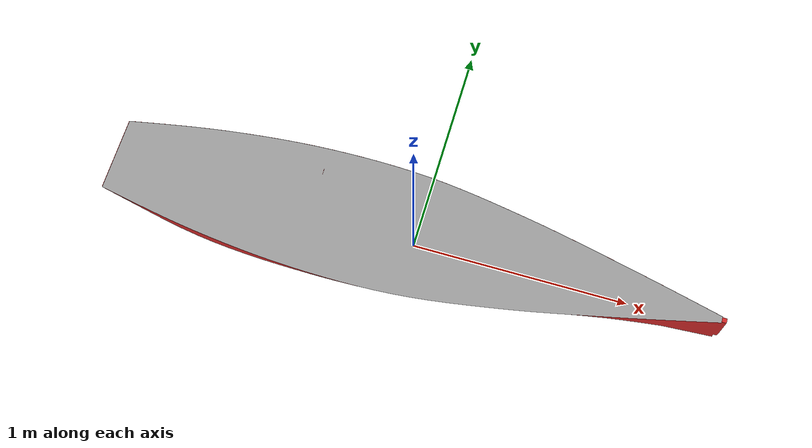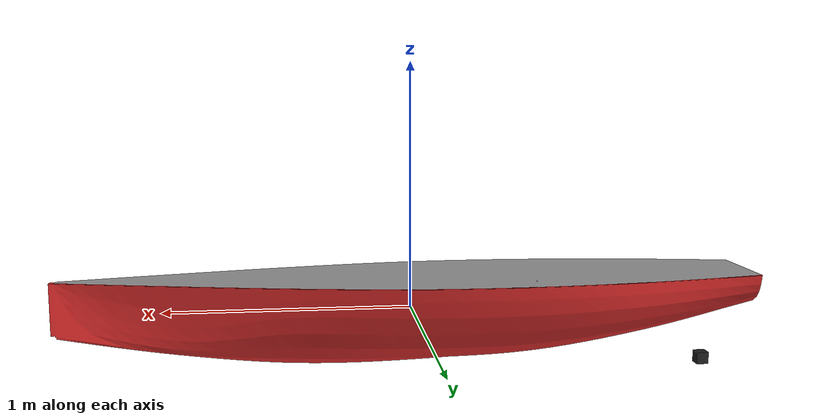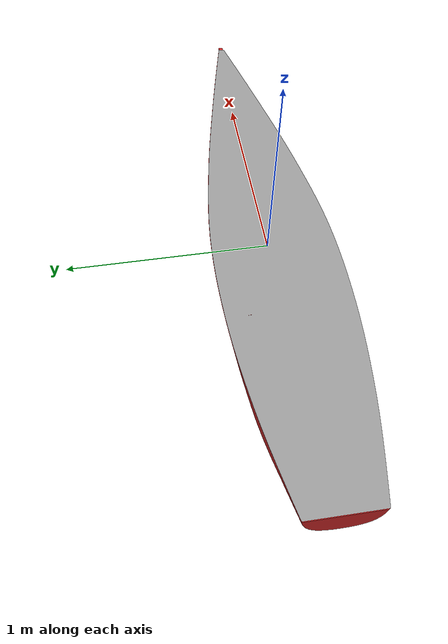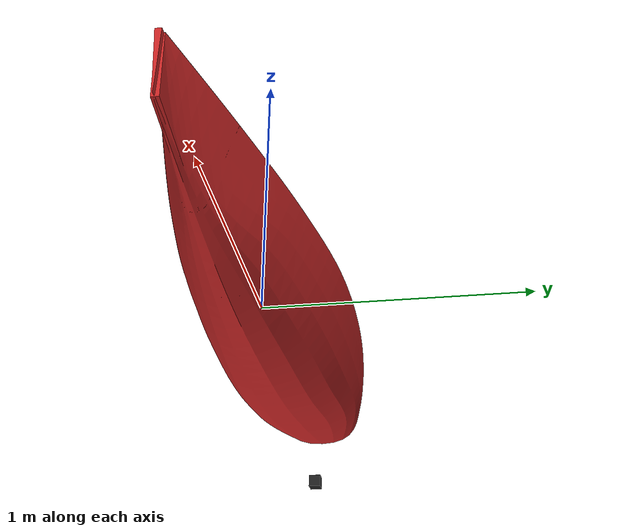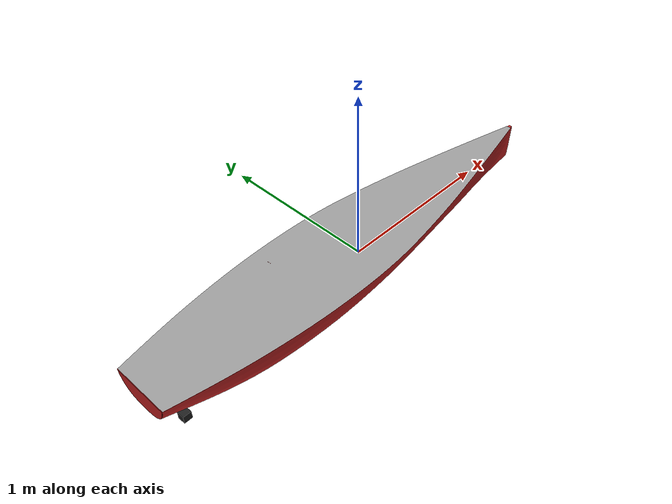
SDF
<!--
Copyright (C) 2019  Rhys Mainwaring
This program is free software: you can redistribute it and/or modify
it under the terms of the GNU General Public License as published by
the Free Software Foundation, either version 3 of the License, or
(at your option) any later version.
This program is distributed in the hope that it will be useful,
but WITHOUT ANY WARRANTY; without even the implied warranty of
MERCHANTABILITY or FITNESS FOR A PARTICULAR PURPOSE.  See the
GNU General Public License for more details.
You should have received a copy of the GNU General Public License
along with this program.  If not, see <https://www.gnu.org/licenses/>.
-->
<?xml version='1.0'?>
<sdf version='1.6'>
  <model name='rs750'>
    <pose>0 0 0 0 0 0</pose>
    <static>false</static>

    <plugin name="link_joint_controller" filename="libLinkJointControllerPlugin.so">
      <input_topic>/cmd_vel</input_topic>
      <link_name>thruster_link</link_name>
      <link_scale>5</link_scale>
      <link_type>velocity</link_type>
      <link_pid>1000 0 10</link_pid>
      <joint_name>thruster_joint</joint_name>
      <joint_scale>0.8</joint_scale>
      <joint_type>position</joint_type>
      <joint_pid>1000 0 10</joint_pid>
    </plugin>

    <plugin name="hydrodynamics" filename="libHydrodynamicsPlugin.so">
      <!-- Wave Model -->
      <wave_model>ocean_waves</wave_model>

      <!-- Hydrodynamics -->
      <damping_on>true</damping_on>
      <viscous_drag_on>true</viscous_drag_on>
      <pressure_drag_on>true</pressure_drag_on>

      <!-- Linear and Angular Damping -->
      <cDampL1>1.0E-6</cDampL1>
      <cDampL2>1.0E-6</cDampL2>
      <cDampR1>1.0E-6</cDampR1>
      <cDampR2>1.0E-6</cDampR2>

      <!-- 'Pressure' Drag -->
      <cPDrag1>1.0E+2</cPDrag1>
      <cPDrag2>1.0E+2</cPDrag2>
      <fPDrag>0.4</fPDrag>
      <cSDrag1>1.0E+2</cSDrag1>
      <cSDrag2>1.0E+2</cSDrag2>
      <fSDrag>0.4</fSDrag>
      <vRDrag>1.0</vRDrag>

      <!-- Markers -->
      <markers>
        <update_rate>30</update_rate>
        <water_patch>false</water_patch>
        <waterline>false</waterline>
        <underwater_surface>false</underwater_surface>
      </markers>
    </plugin>

    <!-- Hull -->
    <link name="base_link">
      <visual name="hull_visual">
        <geometry>
          <mesh>
            <uri>model://rs750/meshes/rs750_hull.stl</uri>
          </mesh>
        </geometry>
        <material>
          <script>
            <name>Gazebo/Red</name>
          </script>
        </material>
      </visual>
      <visual name="deck_visual">
        <geometry>
          <mesh>
            <uri>model://rs750/meshes/rs750_deck.stl</uri>
          </mesh>
        </geometry>
        <material>
          <script>
            <name>Gazebo/Gray</name>
          </script>
        </material>
      </visual>
      <collision name="base_collision">
        <geometry>
          <mesh>
            <uri>model://rs750/meshes/rs750_hull_collision_3.stl</uri>
          </mesh>
        </geometry>
      </collision>
      <inertial>
        <pose>-0.1 0 -0.75 0 0 0</pose>
        <mass>60</mass>
        <inertia>
          <ixx>10</ixx>
          <ixy>0</ixy>
          <iyy>50</iyy>
          <iyz>0</iyz>
          <izz>43</izz>
        </inertia>
      </inertial>

    </link>

    <!-- Thruster -->
    <link name="thruster_link">
      <pose>-1.25 0 -0.25 0 0 0</pose>
      <visual name="thruster_visual">
        <geometry>
          <box>
            <size>0.05 0.05 0.05</size>
          </box>
        </geometry>
        <material>
          <script>
            <name>Gazebo/Black</name>
          </script>
        </material>
      </visual>
      <collision name="thruster_collision">
        <geometry>
          <box>
            <size>0.05 0.05 0.05</size>
          </box>
        </geometry>
      </collision>
      <inertial>
        <pose>0 0 0 0 0 0</pose>
        <mass>0.1</mass>
        <inertia>
          <ixx>0.1</ixx>
          <ixy>0</ixy>
          <iyy>0.1</iyy>
          <iyz>0</iyz>
          <izz>0.1</izz>
        </inertia>
      </inertial>
    </link>

    <joint type="revolute" name="thruster_joint">
      <pose>0 0 0 0 0 0</pose>
      <child>thruster_link</child>
      <parent>base_link</parent>
      <axis>
        <xyz>0 0 1</xyz>
        <limit>
          <lower>-0.8</lower>
          <upper>0.8</upper>
        </limit>
      </axis>
    </joint>

  </model>
</sdf>
